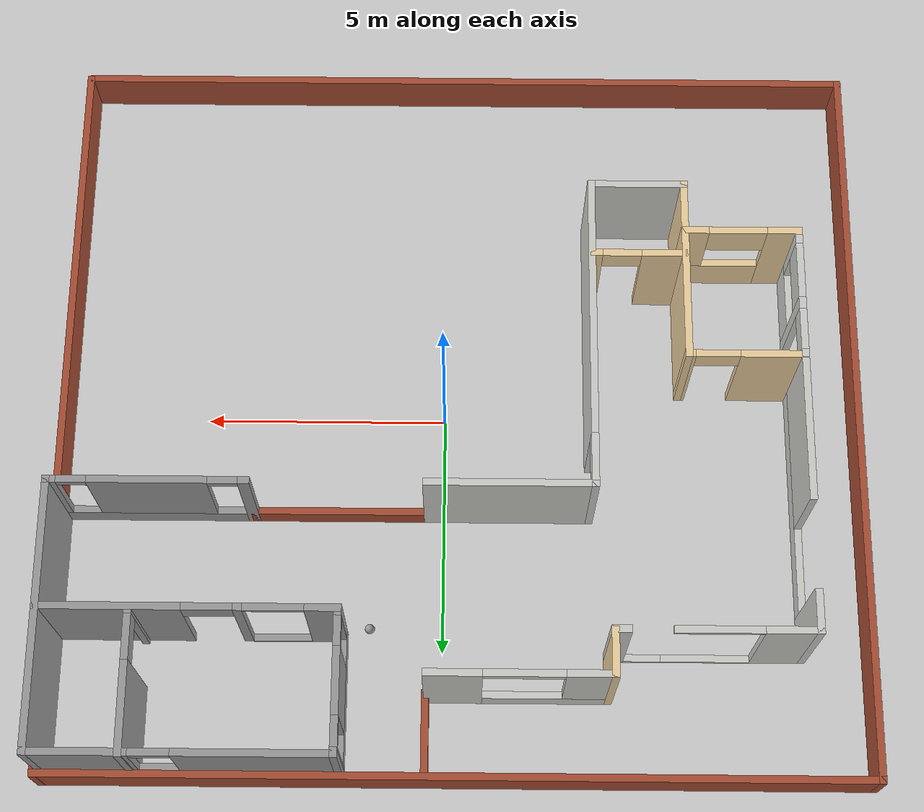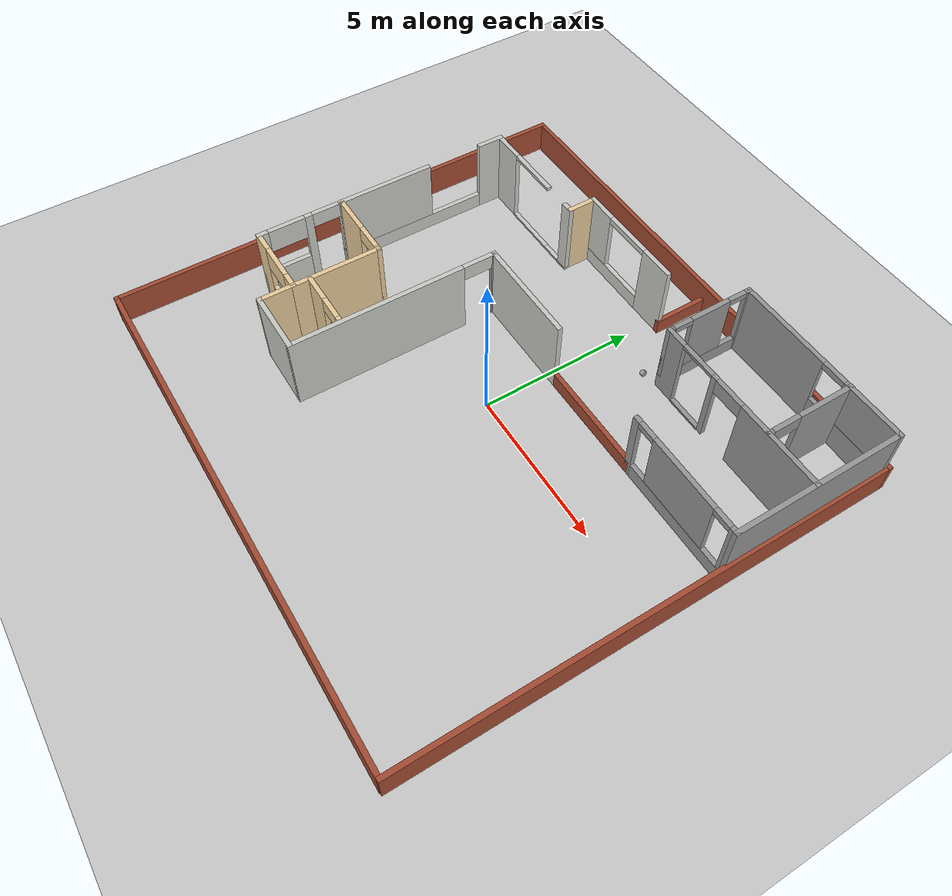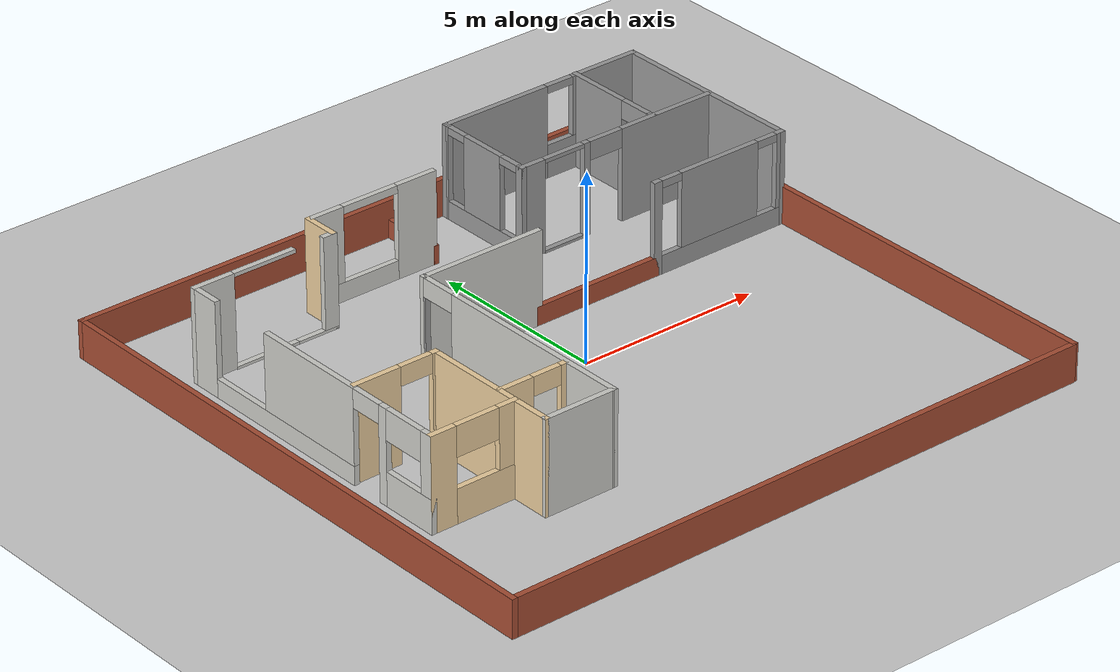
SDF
<sdf version="1.6">
 <world name="default">
  <plugin name="welcome" filename="libwelcome.so"/>
  <light name="sun" type="directional">
   <pose>0 0 10 0 -0 0</pose>
   <diffuse>0.8 0.8 0.8 1</diffuse>
   <specular>0.1 0.1 0.1 1</specular>
   <attenuation>
    <range>1000</range>
    <constant>0.9</constant>
    <linear>0.01</linear>
    <quadratic>0.001</quadratic>
   </attenuation>
   <direction>-0.5 0.5 -1</direction>
  </light>
  <model name="ground_plane">
   <static>1</static>
   <link name="link">
    <collision name="collision">
     <geometry><plane><normal>0 0 1</normal><size>100 100</size></plane></geometry>
     <surface>
      <contact><collide_bitmask>65535</collide_bitmask></contact>
      <friction><ode><mu>100</mu><mu2>50</mu2></ode></friction>
     </surface>
    </collision>
    <visual name="visual">
     <cast_shadows>0</cast_shadows>
     <geometry><plane><normal>0 0 1</normal><size>100 100</size></plane></geometry>
     <material>
      <script><uri>file://media/materials/scripts/gazebo.material</uri><name>Gazebo/Grey</name></script>
     </material>
    </visual>
   </link>
  </model>
  <gravity>0 0 -9.8</gravity>
  <magnetic_field>6e-06 2.3e-05 -4.2e-05</magnetic_field>
  <atmosphere type="adiabatic"/>
  <physics name="default_physics" default="0" type="ode">
   <max_step_size>0.001</max_step_size>
   <real_time_factor>1</real_time_factor>
   <real_time_update_rate>1000</real_time_update_rate>
  </physics>
  <scene><ambient>0.4 0.4 0.4 1</ambient><background>0.7 0.7 0.7 1</background><shadows>1</shadows></scene>
  <spherical_coordinates>
   <surface_model>EARTH_WGS84</surface_model>
   <latitude_deg>0</latitude_deg>
   <longitude_deg>0</longitude_deg>
   <elevation>0</elevation>
   <heading_deg>0</heading_deg>
  </spherical_coordinates>
  <model name="pongrut_house">
   <pose>-0.329079 -0.04 0 0 -0 0</pose>
   <link name="Wall_0">
    <collision name="Wall_0_Collision">
     <geometry><box><size>16.7231 0.15 1</size></box></geometry>
     <pose>0 0 0.5 0 -0 0</pose>
    </collision>
    <visual name="Wall_0_Visual">
     <pose>0 0 0.5 0 -0 0</pose>
     <geometry><box><size>16.7231 0.15 1</size></box></geometry>
     <material>
      <script><uri>file://media/materials/scripts/gazebo.material</uri><name>Gazebo/Bricks</name></script>
      <ambient>1 1 1 1</ambient>
     </material>
     <meta><layer>0</layer></meta>
    </visual>
    <pose>0 7.70141 0 0 -0 0</pose>
   </link>
   <link name="Wall_18">
    <pose>-1.19963 5.9806 0 0 -0 3.14149</pose>
    <visual name="Wall_18_Visual_0">
     <pose>-1.31206 0 1.25 0 -0 0</pose>
     <geometry><box><size>1.16383 0.15 2.5</size></box></geometry>
     <material>
      <script><uri>file://media/materials/scripts/gazebo.material</uri><name>Gazebo/CeilingTiled</name></script>
      <ambient>0.921569 0.807843 0.615686 1</ambient>
     </material>
     <meta><layer>0</layer></meta>
    </visual>
    <collision name="Wall_18_Collision_0">
     <geometry><box><size>1.16383 0.15 2.5</size></box></geometry>
     <pose>-1.31206 0 1.25 0 -0 0</pose>
    </collision>
    <visual name="Wall_18_Visual_1">
     <pose>0.581912 0 0.25 0 -0 0</pose>
     <geometry><box><size>2.62412 0.15 0.5</size></box></geometry>
     <material>
      <script><uri>file://media/materials/scripts/gazebo.material</uri><name>Gazebo/CeilingTiled</name></script>
      <ambient>0.921569 0.807843 0.615686 1</ambient>
     </material>
     <meta><layer>0</layer></meta>
    </visual>
    <collision name="Wall_18_Collision_1">
     <geometry><box><size>2.62412 0.15 0.5</size></box></geometry>
     <pose>0.581912 0 0.25 0 -0 0</pose>
    </collision>
    <visual name="Wall_18_Visual_2">
     <pose>1.38191 0 1.5 0 -0 0</pose>
     <geometry><box><size>1.02412 0.15 2</size></box></geometry>
     <material>
      <script><uri>file://media/materials/scripts/gazebo.material</uri><name>Gazebo/CeilingTiled</name></script>
      <ambient>0.921569 0.807843 0.615686 1</ambient>
     </material>
     <meta><layer>0</layer></meta>
    </visual>
    <collision name="Wall_18_Collision_2">
     <geometry><box><size>1.02412 0.15 2</size></box></geometry>
     <pose>1.38191 0 1.5 0 -0 0</pose>
    </collision>
    <visual name="Wall_18_Visual_3">
     <pose>0.069851 0 2.4 0 -0 0</pose>
     <geometry><box><size>1.6 0.15 0.2</size></box></geometry>
     <material>
      <script><uri>file://media/materials/scripts/gazebo.material</uri><name>Gazebo/CeilingTiled</name></script>
      <ambient>0.921569 0.807843 0.615686 1</ambient>
     </material>
     <meta><layer>0</layer></meta>
    </visual>
    <collision name="Wall_18_Collision_3">
     <geometry><box><size>1.6 0.15 0.2</size></box></geometry>
     <pose>0.069851 0 2.4 0 -0 0</pose>
    </collision>
   </link>
   <link name="Wall_22">
    <pose>-6.96881 0.867525 0 0 0 -1.5708</pose>
    <visual name="Wall_22_Visual_0">
     <pose>-3.85377 0 1.25 0 -0 0</pose>
     <geometry><box><size>0.910059 0.15 2.5</size></box></geometry>
     <material>
      <script><uri>file://media/materials/scripts/gazebo.material</uri><name>Gazebo/CeilingTiled</name></script>
      <ambient>0.921569 0.807843 0.615686 1</ambient>
     </material>
     <meta><layer>0</layer></meta>
    </visual>
    <collision name="Wall_22_Collision_0">
     <geometry><box><size>0.910059 0.15 2.5</size></box></geometry>
     <pose>-3.85377 0 1.25 0 -0 0</pose>
    </collision>
    <visual name="Wall_22_Visual_1">
     <pose>2.62377 0 1.25 0 -0 0</pose>
     <geometry><box><size>0.252126 0.15 2.5</size></box></geometry>
     <material>
      <script><uri>file://media/materials/scripts/gazebo.material</uri><name>Gazebo/CeilingTiled</name></script>
      <ambient>0.921569 0.807843 0.615686 1</ambient>
     </material>
     <meta><layer>0</layer></meta>
    </visual>
    <collision name="Wall_22_Collision_1">
     <geometry><box><size>0.252126 0.15 2.5</size></box></geometry>
     <pose>2.62377 0 1.25 0 -0 0</pose>
    </collision>
    <visual name="Wall_22_Visual_2">
     <pose>-0.900517 0 0.25 0 -0 0</pose>
     <geometry><box><size>4.99644 0.15 0.5</size></box></geometry>
     <material>
      <script><uri>file://media/materials/scripts/gazebo.material</uri><name>Gazebo/CeilingTiled</name></script>
      <ambient>0.921569 0.807843 0.615686 1</ambient>
     </material>
     <meta><layer>0</layer></meta>
    </visual>
    <collision name="Wall_22_Collision_2">
     <geometry><box><size>4.99644 0.15 0.5</size></box></geometry>
     <pose>-0.900517 0 0.25 0 -0 0</pose>
    </collision>
    <visual name="Wall_22_Visual_3">
     <pose>3.52931 0 0.45 0 -0 0</pose>
     <geometry><box><size>1.55897 0.15 0.9</size></box></geometry>
     <material>
      <script><uri>file://media/materials/scripts/gazebo.material</uri><name>Gazebo/CeilingTiled</name></script>
      <ambient>0.921569 0.807843 0.615686 1</ambient>
     </material>
     <meta><layer>0</layer></meta>
    </visual>
    <collision name="Wall_22_Collision_3">
     <geometry><box><size>1.55897 0.15 0.9</size></box></geometry>
     <pose>3.52931 0 0.45 0 -0 0</pose>
    </collision>
    <visual name="Wall_22_Visual_4">
     <pose>-0.000517 0 1.5 0 -0 0</pose>
     <geometry><box><size>3.19644 0.15 2</size></box></geometry>
     <material>
      <script><uri>file://media/materials/scripts/gazebo.material</uri><name>Gazebo/CeilingTiled</name></script>
      <ambient>0.921569 0.807843 0.615686 1</ambient>
     </material>
     <meta><layer>0</layer></meta>
    </visual>
    <collision name="Wall_22_Collision_4">
     <geometry><box><size>3.19644 0.15 2</size></box></geometry>
     <pose>-0.000517 0 1.5 0 -0 0</pose>
    </collision>
    <visual name="Wall_22_Visual_5">
     <pose>4.12931 0 1.7 0 -0 0</pose>
     <geometry><box><size>0.358966 0.15 1.6</size></box></geometry>
     <material>
      <script><uri>file://media/materials/scripts/gazebo.material</uri><name>Gazebo/CeilingTiled</name></script>
      <ambient>0.921569 0.807843 0.615686 1</ambient>
     </material>
     <meta><layer>0</layer></meta>
    </visual>
    <collision name="Wall_22_Collision_5">
     <geometry><box><size>0.358966 0.15 1.6</size></box></geometry>
     <pose>4.12931 0 1.7 0 -0 0</pose>
    </collision>
    <visual name="Wall_22_Visual_6">
     <pose>3.34983 0 2.1 0 -0 0</pose>
     <geometry><box><size>1.2 0.15 0.8</size></box></geometry>
     <material>
      <script><uri>file://media/materials/scripts/gazebo.material</uri><name>Gazebo/CeilingTiled</name></script>
      <ambient>0.921569 0.807843 0.615686 1</ambient>
     </material>
     <meta><layer>0</layer></meta>
    </visual>
    <collision name="Wall_22_Collision_6">
     <geometry><box><size>1.2 0.15 0.8</size></box></geometry>
     <pose>3.34983 0 2.1 0 -0 0</pose>
    </collision>
    <visual name="Wall_22_Visual_7">
     <pose>2.0477 0 2.25 0 -0 0</pose>
     <geometry><box><size>0.9 0.15 0.5</size></box></geometry>
     <material>
      <script><uri>file://media/materials/scripts/gazebo.material</uri><name>Gazebo/CeilingTiled</name></script>
      <ambient>0.921569 0.807843 0.615686 1</ambient>
     </material>
     <meta><layer>0</layer></meta>
    </visual>
    <collision name="Wall_22_Collision_7">
     <geometry><box><size>0.9 0.15 0.5</size></box></geometry>
     <pose>2.0477 0 2.25 0 -0 0</pose>
    </collision>
   </link>
   <link name="Wall_26">
    <collision name="Wall_26_Collision">
     <geometry><box><size>1.01188 0.15 2.5</size></box></geometry>
     <pose>0 0 1.25 0 -0 0</pose>
    </collision>
    <visual name="Wall_26_Visual">
     <pose>0 0 1.25 0 -0 0</pose>
     <geometry><box><size>1.01188 0.15 2.5</size></box></geometry>
     <material>
      <script><uri>file://media/materials/scripts/gazebo.material</uri><name>Gazebo/Grey</name></script>
      <ambient>0.921569 0.807843 0.615686 1</ambient>
     </material>
     <meta><layer>0</layer></meta>
    </visual>
    <pose>-3.0188 5.54989 0 0 0 -1.5709</pose>
   </link>
   <link name="Wall_28">
    <pose>-5.79381 -3.36627 0 0 -0 0</pose>
    <visual name="Wall_28_Visual_0">
     <pose>-0.887893 0 1.25 0 -0 0</pose>
     <geometry><box><size>0.724215 0.15 2.5</size></box></geometry>
     <material>
      <script><uri>file://media/materials/scripts/gazebo.material</uri><name>Gazebo/Grey</name></script>
      <ambient>0.921569 0.807843 0.615686 1</ambient>
     </material>
     <meta><layer>0</layer></meta>
    </visual>
    <collision name="Wall_28_Collision_0">
     <geometry><box><size>0.724215 0.15 2.5</size></box></geometry>
     <pose>-0.887893 0 1.25 0 -0 0</pose>
    </collision>
    <visual name="Wall_28_Visual_1">
     <pose>0.362107 0 0.45 0 -0 0</pose>
     <geometry><box><size>1.77578 0.15 0.9</size></box></geometry>
     <material>
      <script><uri>file://media/materials/scripts/gazebo.material</uri><name>Gazebo/Grey</name></script>
      <ambient>0.921569 0.807843 0.615686 1</ambient>
     </material>
     <meta><layer>0</layer></meta>
    </visual>
    <collision name="Wall_28_Collision_1">
     <geometry><box><size>1.77578 0.15 0.9</size></box></geometry>
     <pose>0.362107 0 0.45 0 -0 0</pose>
    </collision>
    <visual name="Wall_28_Visual_2">
     <pose>0.962107 0 1.7 0 -0 0</pose>
     <geometry><box><size>0.575785 0.15 1.6</size></box></geometry>
     <material>
      <script><uri>file://media/materials/scripts/gazebo.material</uri><name>Gazebo/Grey</name></script>
      <ambient>0.921569 0.807843 0.615686 1</ambient>
     </material>
     <meta><layer>0</layer></meta>
    </visual>
    <collision name="Wall_28_Collision_2">
     <geometry><box><size>0.575785 0.15 1.6</size></box></geometry>
     <pose>0.962107 0 1.7 0 -0 0</pose>
    </collision>
    <visual name="Wall_28_Visual_3">
     <pose>0.074215 0 2.1 0 -0 0</pose>
     <geometry><box><size>1.2 0.15 0.8</size></box></geometry>
     <material>
      <script><uri>file://media/materials/scripts/gazebo.material</uri><name>Gazebo/Grey</name></script>
      <ambient>0.921569 0.807843 0.615686 1</ambient>
     </material>
     <meta><layer>0</layer></meta>
    </visual>
    <collision name="Wall_28_Collision_3">
     <geometry><box><size>1.2 0.15 0.8</size></box></geometry>
     <pose>0.074215 0 2.1 0 -0 0</pose>
    </collision>
   </link>
   <link name="Wall_3">
    <collision name="Wall_3_Collision">
     <geometry><box><size>15.5531 0.15 1</size></box></geometry>
     <pose>0 0 0.5 0 -0 0</pose>
    </collision>
    <visual name="Wall_3_Visual">
     <pose>0 0 0.5 0 -0 0</pose>
     <geometry><box><size>15.5531 0.15 1</size></box></geometry>
     <material>
      <script><uri>file://media/materials/scripts/gazebo.material</uri><name>Gazebo/Bricks</name></script>
      <ambient>1 1 1 1</ambient>
     </material>
     <meta><layer>0</layer></meta>
    </visual>
    <pose>-8.2865 -9.3e-05 0 0 0 -1.5708</pose>
   </link>
   <link name="Wall_30">
    <collision name="Wall_30_Collision">
     <geometry><box><size>1.2 0.15 2.5</size></box></geometry>
     <pose>0 0 1.25 0 -0 0</pose>
    </collision>
    <visual name="Wall_30_Visual">
     <pose>0 0 1.25 0 -0 0</pose>
     <geometry><box><size>1.2 0.15 2.5</size></box></geometry>
     <material>
      <script><uri>file://media/materials/scripts/gazebo.material</uri><name>Gazebo/Grey</name></script>
      <ambient>0.921569 0.807843 0.615686 1</ambient>
     </material>
     <meta><layer>0</layer></meta>
    </visual>
    <pose>-4.61881 -3.89127 0 0 0 -1.5708</pose>
   </link>
   <link name="Wall_32">
    <collision name="Wall_32_Collision">
     <geometry><box><size>2.08231 0.15 2.5</size></box></geometry>
     <pose>0 0 1.25 0 -0 0</pose>
    </collision>
    <visual name="Wall_32_Visual">
     <pose>0 0 1.25 0 -0 0</pose>
     <geometry><box><size>2.08231 0.15 2.5</size></box></geometry>
     <material>
      <script><uri>file://media/materials/scripts/gazebo.material</uri><name>Gazebo/CeilingTiled</name></script>
      <ambient>0.921569 0.807843 0.615686 1</ambient>
     </material>
     <meta><layer>0</layer></meta>
    </visual>
    <pose>-3.65266 -4.41643 0 0 0 -0.000168</pose>
   </link>
   <link name="Wall_39">
    <pose>-4.99381 5.10132 0 0 -0 0</pose>
    <visual name="Wall_39_Visual_0">
     <pose>-1.48216 0 1.25 0 -0 0</pose>
     <geometry><box><size>1.13568 0.15 2.5</size></box></geometry>
     <material>
      <script><uri>file://media/materials/scripts/gazebo.material</uri><name>Gazebo/CeilingTiled</name></script>
      <ambient>0.921569 0.807843 0.615686 1</ambient>
     </material>
     <meta><layer>0</layer></meta>
    </visual>
    <collision name="Wall_39_Collision_0">
     <geometry><box><size>1.13568 0.15 2.5</size></box></geometry>
     <pose>-1.48216 0 1.25 0 -0 0</pose>
    </collision>
    <visual name="Wall_39_Visual_1">
     <pose>1.46784 0 0 0 -0 0</pose>
     <geometry><box><size>1.16432 0.15 0.1</size></box></geometry>
     <material>
      <script><uri>file://media/materials/scripts/gazebo.material</uri><name>Gazebo/CeilingTiled</name></script>
      <ambient>0.921569 0.807843 0.615686 1</ambient>
     </material>
     <meta><layer>0</layer></meta>
    </visual>
    <collision name="Wall_39_Collision_1">
     <geometry><box><size>1.16432 0.15 0.1</size></box></geometry>
     <pose>1.46784 0 0 0 -0 0</pose>
    </collision>
    <visual name="Wall_39_Visual_2">
     <pose>1.849 0 1.25 0 -0 0</pose>
     <geometry><box><size>0.401995 0.15 2.5</size></box></geometry>
     <material>
      <script><uri>file://media/materials/scripts/gazebo.material</uri><name>Gazebo/CeilingTiled</name></script>
      <ambient>0.921569 0.807843 0.615686 1</ambient>
     </material>
     <meta><layer>0</layer></meta>
    </visual>
    <collision name="Wall_39_Collision_2">
     <geometry><box><size>0.401995 0.15 2.5</size></box></geometry>
     <pose>1.849 0 1.25 0 -0 0</pose>
    </collision>
    <visual name="Wall_39_Visual_3">
     <pose>-0.014321 0 0 0 -0 0</pose>
     <geometry><box><size>1.8 0.15 0.1</size></box></geometry>
     <material>
      <script><uri>file://media/materials/scripts/gazebo.material</uri><name>Gazebo/CeilingTiled</name></script>
      <ambient>0.921569 0.807843 0.615686 1</ambient>
     </material>
     <meta><layer>0</layer></meta>
    </visual>
    <collision name="Wall_39_Collision_3">
     <geometry><box><size>1.8 0.15 0.1</size></box></geometry>
     <pose>-0.014321 0 0 0 -0 0</pose>
    </collision>
    <visual name="Wall_39_Visual_4">
     <pose>1.849 0 1.25 0 -0 0</pose>
     <geometry><box><size>0.401995 0.15 2.5</size></box></geometry>
     <material>
      <script><uri>file://media/materials/scripts/gazebo.material</uri><name>Gazebo/CeilingTiled</name></script>
      <ambient>0.921569 0.807843 0.615686 1</ambient>
     </material>
     <meta><layer>0</layer></meta>
    </visual>
    <collision name="Wall_39_Collision_4">
     <geometry><box><size>0.401995 0.15 2.5</size></box></geometry>
     <pose>1.849 0 1.25 0 -0 0</pose>
    </collision>
    <visual name="Wall_39_Visual_5">
     <pose>-0.033158 0 2.45 0 -0 0</pose>
     <geometry><box><size>1.76233 0.15 0.1</size></box></geometry>
     <material>
      <script><uri>file://media/materials/scripts/gazebo.material</uri><name>Gazebo/CeilingTiled</name></script>
      <ambient>0.921569 0.807843 0.615686 1</ambient>
     </material>
     <meta><layer>0</layer></meta>
    </visual>
    <collision name="Wall_39_Collision_5">
     <geometry><box><size>1.76233 0.15 0.1</size></box></geometry>
     <pose>-0.033158 0 2.45 0 -0 0</pose>
    </collision>
   </link>
   <link name="Wall_45">
    <pose>-2.6865 -1.12509 0 0 -0 1.5708</pose>
    <visual name="Wall_45_Visual_0">
     <pose>-0.565074 0 1.25 0 -0 0</pose>
     <geometry><box><size>5.60285 0.15 2.5</size></box></geometry>
     <material>
      <script><uri>file://media/materials/scripts/gazebo.material</uri><name>Gazebo/CeilingTiled</name></script>
      <ambient>0.921569 0.807843 0.615686 1</ambient>
     </material>
     <meta><layer>0</layer></meta>
    </visual>
    <collision name="Wall_45_Collision_0">
     <geometry><box><size>5.60285 0.15 2.5</size></box></geometry>
     <pose>-0.565074 0 1.25 0 -0 0</pose>
    </collision>
    <visual name="Wall_45_Visual_1">
     <pose>3.30143 0 1.25 0 -0 0</pose>
     <geometry><box><size>0.130149 0.15 2.5</size></box></geometry>
     <material>
      <script><uri>file://media/materials/scripts/gazebo.material</uri><name>Gazebo/CeilingTiled</name></script>
      <ambient>0.921569 0.807843 0.615686 1</ambient>
     </material>
     <meta><layer>0</layer></meta>
    </visual>
    <collision name="Wall_45_Collision_1">
     <geometry><box><size>0.130149 0.15 2.5</size></box></geometry>
     <pose>3.30143 0 1.25 0 -0 0</pose>
    </collision>
    <visual name="Wall_45_Visual_2">
     <pose>2.73635 0 2.25 0 -0 0</pose>
     <geometry><box><size>1 0.15 0.5</size></box></geometry>
     <material>
      <script><uri>file://media/materials/scripts/gazebo.material</uri><name>Gazebo/CeilingTiled</name></script>
      <ambient>0.921569 0.807843 0.615686 1</ambient>
     </material>
     <meta><layer>0</layer></meta>
    </visual>
    <collision name="Wall_45_Collision_2">
     <geometry><box><size>1 0.15 0.5</size></box></geometry>
     <pose>2.73635 0 2.25 0 -0 0</pose>
    </collision>
   </link>
   <link name="Wall_5">
    <collision name="Wall_5_Collision">
     <geometry><box><size>15.5374 0.15 1</size></box></geometry>
     <pose>0 0 0.5 0 -0 0</pose>
    </collision>
    <visual name="Wall_5_Visual">
     <pose>0 0 0.5 0 -0 0</pose>
     <geometry><box><size>15.5374 0.15 1</size></box></geometry>
     <material>
      <script><uri>file://media/materials/scripts/gazebo.material</uri><name>Gazebo/Bricks</name></script>
      <ambient>1 1 1 1</ambient>
     </material>
     <meta><layer>0</layer></meta>
    </visual>
    <pose>8.2865 0.007907 0 0 0 -1.5708</pose>
   </link>
   <link name="Wall_54">
    <collision name="Wall_54_Collision">
     <geometry><box><size>0.186 0.15 2.5</size></box></geometry>
     <pose>0 0 1.25 0 -0 0</pose>
    </collision>
    <visual name="Wall_54_Visual">
     <pose>0 0 1.25 0 -0 0</pose>
     <geometry><box><size>0.186 0.15 2.5</size></box></geometry>
     <material>
      <script><uri>file://media/materials/scripts/gazebo.material</uri><name>Gazebo/Grey</name></script>
      <ambient>1 1 1 1</ambient>
     </material>
     <meta><layer>0</layer></meta>
    </visual>
    <pose>-2.6865 2.14841 0 0 0 -1.5708</pose>
   </link>
   <link name="Wall_59">
    <collision name="Wall_59_Collision">
     <geometry><box><size>3.5 0.15 2.5</size></box></geometry>
     <pose>0 0 1.25 0 -0 0</pose>
    </collision>
    <visual name="Wall_59_Visual">
     <pose>0 0 1.25 0 -0 0</pose>
     <geometry><box><size>3.5 0.15 2.5</size></box></geometry>
     <material>
      <script><uri>file://media/materials/scripts/gazebo.material</uri><name>Gazebo/CeilingTiled</name></script>
      <ambient>0.921569 0.807843 0.615686 1</ambient>
     </material>
     <meta><layer>0</layer></meta>
    </visual>
    <pose>-1.0115 2.16641 0 0 -0 0</pose>
   </link>
   <link name="Wall_62">
    <collision name="Wall_62_Collision">
     <geometry><box><size>2.9 0.15 2.5</size></box></geometry>
     <pose>0 0 1.25 0 -0 0</pose>
    </collision>
    <visual name="Wall_62_Visual">
     <pose>0 0 1.25 0 -0 0</pose>
     <geometry><box><size>2.9 0.15 2.5</size></box></geometry>
     <material>
      <script><uri>file://media/materials/scripts/gazebo.material</uri><name>Gazebo/Grey</name></script>
      <ambient>0.921569 0.807843 0.615686 1</ambient>
     </material>
     <meta><layer>0</layer></meta>
    </visual>
    <pose>-4.61881 -1.99127 0 0 -0 1.5708</pose>
   </link>
   <link name="Wall_64">
    <pose>-5.79381 -0.616269 0 0 -0 3.14159</pose>
    <visual name="Wall_64_Visual_0">
     <pose>-1.14338 0 1.25 0 -0 0</pose>
     <geometry><box><size>0.213234 0.15 2.5</size></box></geometry>
     <material>
      <script><uri>file://media/materials/scripts/gazebo.material</uri><name>Gazebo/Grey</name></script>
      <ambient>0.921569 0.807843 0.615686 1</ambient>
     </material>
     <meta><layer>0</layer></meta>
    </visual>
    <collision name="Wall_64_Collision_0">
     <geometry><box><size>0.213234 0.15 2.5</size></box></geometry>
     <pose>-1.14338 0 1.25 0 -0 0</pose>
    </collision>
    <visual name="Wall_64_Visual_1">
     <pose>0.556617 0 1.25 0 -0 0</pose>
     <geometry><box><size>1.38677 0.15 2.5</size></box></geometry>
     <material>
      <script><uri>file://media/materials/scripts/gazebo.material</uri><name>Gazebo/Grey</name></script>
      <ambient>0.921569 0.807843 0.615686 1</ambient>
     </material>
     <meta><layer>0</layer></meta>
    </visual>
    <collision name="Wall_64_Collision_1">
     <geometry><box><size>1.38677 0.15 2.5</size></box></geometry>
     <pose>0.556617 0 1.25 0 -0 0</pose>
    </collision>
    <visual name="Wall_64_Visual_2">
     <pose>-0.586766 0 2.25 0 -0 0</pose>
     <geometry><box><size>0.9 0.15 0.5</size></box></geometry>
     <material>
      <script><uri>file://media/materials/scripts/gazebo.material</uri><name>Gazebo/Grey</name></script>
      <ambient>0.921569 0.807843 0.615686 1</ambient>
     </material>
     <meta><layer>0</layer></meta>
    </visual>
    <collision name="Wall_64_Collision_2">
     <geometry><box><size>0.9 0.15 0.5</size></box></geometry>
     <pose>-0.586766 0 2.25 0 -0 0</pose>
    </collision>
   </link>
   <link name="Wall_7">
    <collision name="Wall_7_Collision">
     <geometry><box><size>16.653 0.15 1</size></box></geometry>
     <pose>0 0 0.5 0 -0 0</pose>
    </collision>
    <visual name="Wall_7_Visual">
     <pose>0 0 0.5 0 -0 0</pose>
     <geometry><box><size>16.653 0.15 1</size></box></geometry>
     <material>
      <script><uri>file://media/materials/scripts/gazebo.material</uri><name>Gazebo/Bricks</name></script>
      <ambient>1 1 1 1</ambient>
     </material>
     <meta><layer>0</layer></meta>
    </visual>
    <pose>-0.035 -7.70159 0 0 -0 0</pose>
   </link>
   <link name="Wall_72">
    <pose>6.2085 2.16641 0 0 -0 0</pose>
    <visual name="Wall_72_Visual_0">
     <pose>-1.93039 0 1.25 0 -0 0</pose>
     <geometry><box><size>0.239214 0.15 2.5</size></box></geometry>
     <material>
      <script><uri>file://media/materials/scripts/gazebo.material</uri><name>Gazebo/Grey</name></script>
      <ambient>0.372549 0.372549 0.372549 1</ambient>
     </material>
     <meta><layer>0</layer></meta>
    </visual>
    <collision name="Wall_72_Collision_0">
     <geometry><box><size>0.239214 0.15 2.5</size></box></geometry>
     <pose>-1.93039 0 1.25 0 -0 0</pose>
    </collision>
    <visual name="Wall_72_Visual_1">
     <pose>0.119607 0 0.25 0 -0 0</pose>
     <geometry><box><size>3.86079 0.15 0.5</size></box></geometry>
     <material>
      <script><uri>file://media/materials/scripts/gazebo.material</uri><name>Gazebo/Grey</name></script>
      <ambient>0.372549 0.372549 0.372549 1</ambient>
     </material>
     <meta><layer>0</layer></meta>
    </visual>
    <collision name="Wall_72_Collision_1">
     <geometry><box><size>3.86079 0.15 0.5</size></box></geometry>
     <pose>0.119607 0 0.25 0 -0 0</pose>
    </collision>
    <visual name="Wall_72_Visual_2">
     <pose>-0.013929 0 1.5 0 -0 0</pose>
     <geometry><box><size>2.39371 0.15 2</size></box></geometry>
     <material>
      <script><uri>file://media/materials/scripts/gazebo.material</uri><name>Gazebo/Grey</name></script>
      <ambient>0.372549 0.372549 0.372549 1</ambient>
     </material>
     <meta><layer>0</layer></meta>
    </visual>
    <collision name="Wall_72_Collision_2">
     <geometry><box><size>2.39371 0.15 2</size></box></geometry>
     <pose>-0.013929 0 1.5 0 -0 0</pose>
    </collision>
    <visual name="Wall_72_Visual_3">
     <pose>1.91646 0 1.5 0 -0 0</pose>
     <geometry><box><size>0.267073 0.15 2</size></box></geometry>
     <material>
      <script><uri>file://media/materials/scripts/gazebo.material</uri><name>Gazebo/Grey</name></script>
      <ambient>0.372549 0.372549 0.372549 1</ambient>
     </material>
     <meta><layer>0</layer></meta>
    </visual>
    <collision name="Wall_72_Collision_3">
     <geometry><box><size>0.267073 0.15 2</size></box></geometry>
     <pose>1.91646 0 1.5 0 -0 0</pose>
    </collision>
    <visual name="Wall_72_Visual_4">
     <pose>-1.51079 0 2.4 0 -0 0</pose>
     <geometry><box><size>0.6 0.15 0.2</size></box></geometry>
     <material>
      <script><uri>file://media/materials/scripts/gazebo.material</uri><name>Gazebo/Grey</name></script>
      <ambient>0.372549 0.372549 0.372549 1</ambient>
     </material>
     <meta><layer>0</layer></meta>
    </visual>
    <collision name="Wall_72_Collision_4">
     <geometry><box><size>0.6 0.15 0.2</size></box></geometry>
     <pose>-1.51079 0 2.4 0 -0 0</pose>
    </collision>
    <visual name="Wall_72_Visual_5">
     <pose>1.48293 0 2.4 0 -0 0</pose>
     <geometry><box><size>0.6 0.15 0.2</size></box></geometry>
     <material>
      <script><uri>file://media/materials/scripts/gazebo.material</uri><name>Gazebo/Grey</name></script>
      <ambient>0.372549 0.372549 0.372549 1</ambient>
     </material>
     <meta><layer>0</layer></meta>
    </visual>
    <collision name="Wall_72_Collision_5">
     <geometry><box><size>0.6 0.15 0.2</size></box></geometry>
     <pose>1.48293 0 2.4 0 -0 0</pose>
    </collision>
   </link>
   <link name="Wall_76">
    <pose>5.2585 7.55141 0 0 -0 0</pose>
    <visual name="Wall_76_Visual_0">
     <pose>-1.42413 0 1.25 0 -0 0</pose>
     <geometry><box><size>3.15174 0.15 2.5</size></box></geometry>
     <material>
      <script><uri>file://media/materials/scripts/gazebo.material</uri><name>Gazebo/Grey</name></script>
      <ambient>0.372549 0.372549 0.372549 1</ambient>
     </material>
     <meta><layer>0</layer></meta>
    </visual>
    <collision name="Wall_76_Collision_0">
     <geometry><box><size>3.15174 0.15 2.5</size></box></geometry>
     <pose>-1.42413 0 1.25 0 -0 0</pose>
    </collision>
    <visual name="Wall_76_Visual_1">
     <pose>1.57587 0 0.45 0 -0 0</pose>
     <geometry><box><size>2.84826 0.15 0.9</size></box></geometry>
     <material>
      <script><uri>file://media/materials/scripts/gazebo.material</uri><name>Gazebo/Grey</name></script>
      <ambient>0.372549 0.372549 0.372549 1</ambient>
     </material>
     <meta><layer>0</layer></meta>
    </visual>
    <collision name="Wall_76_Collision_1">
     <geometry><box><size>2.84826 0.15 0.9</size></box></geometry>
     <pose>1.57587 0 0.45 0 -0 0</pose>
    </collision>
    <visual name="Wall_76_Visual_2">
     <pose>1.97587 0 1.7 0 -0 0</pose>
     <geometry><box><size>2.04826 0.15 1.6</size></box></geometry>
     <material>
      <script><uri>file://media/materials/scripts/gazebo.material</uri><name>Gazebo/Grey</name></script>
      <ambient>0.372549 0.372549 0.372549 1</ambient>
     </material>
     <meta><layer>0</layer></meta>
    </visual>
    <collision name="Wall_76_Collision_2">
     <geometry><box><size>2.04826 0.15 1.6</size></box></geometry>
     <pose>1.97587 0 1.7 0 -0 0</pose>
    </collision>
    <visual name="Wall_76_Visual_3">
     <pose>0.551743 0 2.4 0 -0 0</pose>
     <geometry><box><size>0.8 0.15 0.2</size></box></geometry>
     <material>
      <script><uri>file://media/materials/scripts/gazebo.material</uri><name>Gazebo/Grey</name></script>
      <ambient>0.372549 0.372549 0.372549 1</ambient>
     </material>
     <meta><layer>0</layer></meta>
    </visual>
    <collision name="Wall_76_Collision_3">
     <geometry><box><size>0.8 0.15 0.2</size></box></geometry>
     <pose>0.551743 0 2.4 0 -0 0</pose>
    </collision>
   </link>
   <link name="Wall_78">
    <collision name="Wall_78_Collision">
     <geometry><box><size>5.53521 0.15 2.5</size></box></geometry>
     <pose>0 0 1.25 0 -0 0</pose>
    </collision>
    <visual name="Wall_78_Visual">
     <pose>0 0 1.25 0 -0 0</pose>
     <geometry><box><size>5.53521 0.15 2.5</size></box></geometry>
     <material>
      <script><uri>file://media/materials/scripts/gazebo.material</uri><name>Gazebo/Grey</name></script>
      <ambient>0.372549 0.372549 0.372549 1</ambient>
     </material>
     <meta><layer>0</layer></meta>
    </visual>
    <pose>8.1835 4.85891 0 0 -0 1.5708</pose>
   </link>
   <link name="Wall_80">
    <collision name="Wall_80_Collision">
     <geometry><box><size>1.75 0.15 0.5</size></box></geometry>
     <pose>0 0 0.25 0 -0 0</pose>
    </collision>
    <visual name="Wall_80_Visual">
     <pose>0 0 0.25 0 -0 0</pose>
     <geometry><box><size>1.75 0.15 0.5</size></box></geometry>
     <material>
      <script><uri>file://media/materials/scripts/gazebo.material</uri><name>Gazebo/Bricks</name></script>
      <ambient>1 1 1 1</ambient>
     </material>
     <meta><layer>0</layer></meta>
    </visual>
    <pose>0.6635 6.76641 0 0 -0 1.5708</pose>
   </link>
   <link name="Wall_82">
    <collision name="Wall_82_Collision">
     <geometry><box><size>3.72 0.15 0.5</size></box></geometry>
     <pose>0 0 0.25 0 -0 0</pose>
    </collision>
    <visual name="Wall_82_Visual">
     <pose>0 0 0.25 0 -0 0</pose>
     <geometry><box><size>3.72 0.15 0.5</size></box></geometry>
     <material>
      <script><uri>file://media/materials/scripts/gazebo.material</uri><name>Gazebo/Bricks</name></script>
      <ambient>1 1 1 1</ambient>
     </material>
     <meta><layer>0</layer></meta>
    </visual>
    <pose>2.4485 2.16641 0 0 -0 0</pose>
   </link>
   <link name="Wall_84">
    <pose>5.2585 4.73441 0 0 -0 0</pose>
    <visual name="Wall_84_Visual_0">
     <pose>-2.63758 0 1.25 0 -0 0</pose>
     <geometry><box><size>0.724843 0.15 2.5</size></box></geometry>
     <material>
      <script><uri>file://media/materials/scripts/gazebo.material</uri><name>Gazebo/Grey</name></script>
      <ambient>0.372549 0.372549 0.372549 1</ambient>
     </material>
     <meta><layer>0</layer></meta>
    </visual>
    <collision name="Wall_84_Collision_0">
     <geometry><box><size>0.724843 0.15 2.5</size></box></geometry>
     <pose>-2.63758 0 1.25 0 -0 0</pose>
    </collision>
    <visual name="Wall_84_Visual_1">
     <pose>-0.983144 0 1.25 0 -0 0</pose>
     <geometry><box><size>0.184025 0.15 2.5</size></box></geometry>
     <material>
      <script><uri>file://media/materials/scripts/gazebo.material</uri><name>Gazebo/Grey</name></script>
      <ambient>0.372549 0.372549 0.372549 1</ambient>
     </material>
     <meta><layer>0</layer></meta>
    </visual>
    <collision name="Wall_84_Collision_1">
     <geometry><box><size>0.184025 0.15 2.5</size></box></geometry>
     <pose>-0.983144 0 1.25 0 -0 0</pose>
    </collision>
    <visual name="Wall_84_Visual_2">
     <pose>1.55443 0 1.25 0 -0 0</pose>
     <geometry><box><size>2.89113 0.15 2.5</size></box></geometry>
     <material>
      <script><uri>file://media/materials/scripts/gazebo.material</uri><name>Gazebo/Grey</name></script>
      <ambient>0.372549 0.372549 0.372549 1</ambient>
     </material>
     <meta><layer>0</layer></meta>
    </visual>
    <collision name="Wall_84_Collision_2">
     <geometry><box><size>2.89113 0.15 2.5</size></box></geometry>
     <pose>1.55443 0 1.25 0 -0 0</pose>
    </collision>
    <visual name="Wall_84_Visual_3">
     <pose>-1.67516 0 0 0 -0 0</pose>
     <geometry><box><size>1.2 0.15 0.1</size></box></geometry>
     <material>
      <script><uri>file://media/materials/scripts/gazebo.material</uri><name>Gazebo/Grey</name></script>
      <ambient>0.372549 0.372549 0.372549 1</ambient>
     </material>
     <meta><layer>0</layer></meta>
    </visual>
    <collision name="Wall_84_Collision_3">
     <geometry><box><size>1.2 0.15 0.1</size></box></geometry>
     <pose>-1.67516 0 0 0 -0 0</pose>
    </collision>
    <visual name="Wall_84_Visual_4">
     <pose>-0.391131 0 2.25 0 -0 0</pose>
     <geometry><box><size>1 0.15 0.5</size></box></geometry>
     <material>
      <script><uri>file://media/materials/scripts/gazebo.material</uri><name>Gazebo/Grey</name></script>
      <ambient>0.372549 0.372549 0.372549 1</ambient>
     </material>
     <meta><layer>0</layer></meta>
    </visual>
    <collision name="Wall_84_Collision_4">
     <geometry><box><size>1 0.15 0.5</size></box></geometry>
     <pose>-0.391131 0 2.25 0 -0 0</pose>
    </collision>
    <visual name="Wall_84_Visual_5">
     <pose>-1.67516 0 2.45 0 -0 0</pose>
     <geometry><box><size>1.2 0.15 0.1</size></box></geometry>
     <material>
      <script><uri>file://media/materials/scripts/gazebo.material</uri><name>Gazebo/Grey</name></script>
      <ambient>0.372549 0.372549 0.372549 1</ambient>
     </material>
     <meta><layer>0</layer></meta>
    </visual>
    <collision name="Wall_84_Collision_5">
     <geometry><box><size>1.2 0.15 0.1</size></box></geometry>
     <pose>-1.67516 0 2.45 0 -0 0</pose>
    </collision>
   </link>
   <link name="Wall_90">
    <pose>2.3335 6.14291 0 0 0 -1.5708</pose>
    <visual name="Wall_90_Visual_0">
     <pose>-1.3767 0 1.25 0 -0 0</pose>
     <geometry><box><size>0.213607 0.15 2.5</size></box></geometry>
     <material>
      <script><uri>file://media/materials/scripts/gazebo.material</uri><name>Gazebo/Grey</name></script>
      <ambient>0.372549 0.372549 0.372549 1</ambient>
     </material>
     <meta><layer>0</layer></meta>
    </visual>
    <collision name="Wall_90_Collision_0">
     <geometry><box><size>0.213607 0.15 2.5</size></box></geometry>
     <pose>-1.3767 0 1.25 0 -0 0</pose>
    </collision>
    <visual name="Wall_90_Visual_1">
     <pose>0.106804 0 0.25 0 -0 0</pose>
     <geometry><box><size>2.75339 0.15 0.5</size></box></geometry>
     <material>
      <script><uri>file://media/materials/scripts/gazebo.material</uri><name>Gazebo/Grey</name></script>
      <ambient>0.372549 0.372549 0.372549 1</ambient>
     </material>
     <meta><layer>0</layer></meta>
    </visual>
    <collision name="Wall_90_Collision_1">
     <geometry><box><size>2.75339 0.15 0.5</size></box></geometry>
     <pose>0.106804 0 0.25 0 -0 0</pose>
    </collision>
    <visual name="Wall_90_Visual_2">
     <pose>-0.002477 0 1.5 0 -0 0</pose>
     <geometry><box><size>1.33483 0.15 2</size></box></geometry>
     <material>
      <script><uri>file://media/materials/scripts/gazebo.material</uri><name>Gazebo/Grey</name></script>
      <ambient>0.372549 0.372549 0.372549 1</ambient>
     </material>
     <meta><layer>0</layer></meta>
    </visual>
    <collision name="Wall_90_Collision_2">
     <geometry><box><size>1.33483 0.15 2</size></box></geometry>
     <pose>-0.002477 0 1.5 0 -0 0</pose>
    </collision>
    <visual name="Wall_90_Visual_3">
     <pose>1.37422 0 1.5 0 -0 0</pose>
     <geometry><box><size>0.218561 0.15 2</size></box></geometry>
     <material>
      <script><uri>file://media/materials/scripts/gazebo.material</uri><name>Gazebo/Grey</name></script>
      <ambient>0.372549 0.372549 0.372549 1</ambient>
     </material>
     <meta><layer>0</layer></meta>
    </visual>
    <collision name="Wall_90_Collision_3">
     <geometry><box><size>0.218561 0.15 2</size></box></geometry>
     <pose>1.37422 0 1.5 0 -0 0</pose>
    </collision>
    <visual name="Wall_90_Visual_4">
     <pose>-0.969893 0 2.4 0 -0 0</pose>
     <geometry><box><size>0.6 0.15 0.2</size></box></geometry>
     <material>
      <script><uri>file://media/materials/scripts/gazebo.material</uri><name>Gazebo/Grey</name></script>
      <ambient>0.372549 0.372549 0.372549 1</ambient>
     </material>
     <meta><layer>0</layer></meta>
    </visual>
    <collision name="Wall_90_Collision_4">
     <geometry><box><size>0.6 0.15 0.2</size></box></geometry>
     <pose>-0.969893 0 2.4 0 -0 0</pose>
    </collision>
    <visual name="Wall_90_Visual_5">
     <pose>0.964939 0 2.4 0 -0 0</pose>
     <geometry><box><size>0.6 0.15 0.2</size></box></geometry>
     <material>
      <script><uri>file://media/materials/scripts/gazebo.material</uri><name>Gazebo/Grey</name></script>
      <ambient>0.372549 0.372549 0.372549 1</ambient>
     </material>
     <meta><layer>0</layer></meta>
    </visual>
    <collision name="Wall_90_Collision_5">
     <geometry><box><size>0.6 0.15 0.2</size></box></geometry>
     <pose>0.964939 0 2.4 0 -0 0</pose>
    </collision>
   </link>
   <link name="Wall_95">
    <pose>6.3835 6.16091 0 0 -0 1.5708</pose>
    <visual name="Wall_95_Visual_0">
     <pose>-1.38096 0 1.25 0 -0 0</pose>
     <geometry><box><size>0.205071 0.15 2.5</size></box></geometry>
     <material>
      <script><uri>file://media/materials/scripts/gazebo.material</uri><name>Gazebo/Grey</name></script>
      <ambient>0.372549 0.372549 0.372549 1</ambient>
     </material>
     <meta><layer>0</layer></meta>
    </visual>
    <collision name="Wall_95_Collision_0">
     <geometry><box><size>0.205071 0.15 2.5</size></box></geometry>
     <pose>-1.38096 0 1.25 0 -0 0</pose>
    </collision>
    <visual name="Wall_95_Visual_1">
     <pose>0.552535 0 1.25 0 -0 0</pose>
     <geometry><box><size>1.86193 0.15 2.5</size></box></geometry>
     <material>
      <script><uri>file://media/materials/scripts/gazebo.material</uri><name>Gazebo/Grey</name></script>
      <ambient>0.372549 0.372549 0.372549 1</ambient>
     </material>
     <meta><layer>0</layer></meta>
    </visual>
    <collision name="Wall_95_Collision_1">
     <geometry><box><size>1.86193 0.15 2.5</size></box></geometry>
     <pose>0.552535 0 1.25 0 -0 0</pose>
    </collision>
    <visual name="Wall_95_Visual_2">
     <pose>-0.828429 0 2.25 0 -0 0</pose>
     <geometry><box><size>0.9 0.15 0.5</size></box></geometry>
     <material>
      <script><uri>file://media/materials/scripts/gazebo.material</uri><name>Gazebo/Grey</name></script>
      <ambient>0.372549 0.372549 0.372549 1</ambient>
     </material>
     <meta><layer>0</layer></meta>
    </visual>
    <collision name="Wall_95_Collision_2">
     <geometry><box><size>0.9 0.15 0.5</size></box></geometry>
     <pose>-0.828429 0 2.25 0 -0 0</pose>
    </collision>
   </link>
   <link name="Wall_97">
    <pose>-3.65498 -2.83886 0 0 -0 0</pose>
    <visual name="Wall_97_Visual_0">
     <pose>-0.525325 0 1.25 0 -0 0</pose>
     <geometry><box><size>0.949351 0.15 2.5</size></box></geometry>
     <material>
      <script><uri>file://media/materials/scripts/gazebo.material</uri><name>Gazebo/Grey</name></script>
      <ambient>0.921569 0.807843 0.615686 1</ambient>
     </material>
     <meta><layer>0</layer></meta>
    </visual>
    <collision name="Wall_97_Collision_0">
     <geometry><box><size>0.949351 0.15 2.5</size></box></geometry>
     <pose>-0.525325 0 1.25 0 -0 0</pose>
    </collision>
    <visual name="Wall_97_Visual_1">
     <pose>0.874675 0 1.25 0 -0 0</pose>
     <geometry><box><size>0.250649 0.15 2.5</size></box></geometry>
     <material>
      <script><uri>file://media/materials/scripts/gazebo.material</uri><name>Gazebo/Grey</name></script>
      <ambient>0.921569 0.807843 0.615686 1</ambient>
     </material>
     <meta><layer>0</layer></meta>
    </visual>
    <collision name="Wall_97_Collision_1">
     <geometry><box><size>0.250649 0.15 2.5</size></box></geometry>
     <pose>0.874675 0 1.25 0 -0 0</pose>
    </collision>
    <visual name="Wall_97_Visual_2">
     <pose>0.349351 0 2.25 0 -0 0</pose>
     <geometry><box><size>0.8 0.15 0.5</size></box></geometry>
     <material>
      <script><uri>file://media/materials/scripts/gazebo.material</uri><name>Gazebo/Grey</name></script>
      <ambient>0.921569 0.807843 0.615686 1</ambient>
     </material>
     <meta><layer>0</layer></meta>
    </visual>
    <collision name="Wall_97_Collision_2">
     <geometry><box><size>0.8 0.15 0.5</size></box></geometry>
     <pose>0.349351 0 2.25 0 -0 0</pose>
    </collision>
   </link>
   <static>1</static>
  </model>
  <model name="my_ball">
   <link name="link_0">
    <inertial>
     <mass>1</mass>
     <inertia><ixx>0.1</ixx><ixy>0</ixy><ixz>0</ixz><iyy>0.1</iyy><iyz>0</iyz><izz>0.1</izz></inertia>
    </inertial>
    <visual name="visual">
     <geometry><sphere><radius>0.1</radius></sphere></geometry>
     <material>
      <lighting>1</lighting>
      <script><uri>file://media/materials/scripts/gazebo.material</uri><name>Gazebo/Grey</name></script>
      <shader type="pixel"><normal_map>__default__</normal_map></shader>
      <ambient>1 1 1 1</ambient>
      <diffuse>1 1 1 1</diffuse>
      <specular>1 1 1 1</specular>
      <emissive>1 1 1 1</emissive>
     </material>
    </visual>
    <collision name="collision">
     <geometry><sphere><radius>0.1</radius></sphere></geometry>
     <surface>
      <friction>
       <ode><mu>1</mu><mu2>1</mu2><fdir1>0 0 0</fdir1><slip1>0</slip1><slip2>0</slip2></ode>
       <torsional>
        <coefficient>1</coefficient>
        <patch_radius>0</patch_radius>
        <surface_radius>0</surface_radius>
        <use_patch_radius>1</use_patch_radius>
        <ode><slip>0</slip></ode>
       </torsional>
      </friction>
      <bounce><restitution_coefficient>0</restitution_coefficient><threshold>1e+06</threshold></bounce>
      <contact>
       <collide_without_contact>0</collide_without_contact>
       <collide_without_contact_bitmask>1</collide_without_contact_bitmask>
       <collide_bitmask>1</collide_bitmask>
       <ode>
        <soft_cfm>0</soft_cfm>
        <soft_erp>0.2</soft_erp>
        <kp>1e+13</kp>
        <kd>1</kd>
        <max_vel>0.01</max_vel>
        <min_depth>0</min_depth>
       </ode>
       <bullet>
        <split_impulse>1</split_impulse>
        <split_impulse_penetration_threshold>-0.01</split_impulse_penetration_threshold>
        <soft_cfm>0</soft_cfm>
        <soft_erp>0.2</soft_erp>
        <kp>1e+13</kp>
        <kd>1</kd>
       </bullet>
      </contact>
     </surface>
    </collision>
   </link>
   <static>0</static>
   <pose>1.48948 4.52073 0.1 0 -0 0</pose>
  </model>
 </world>
</sdf>
